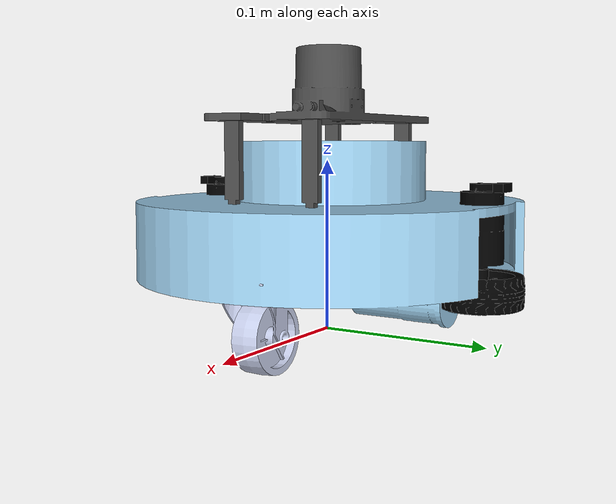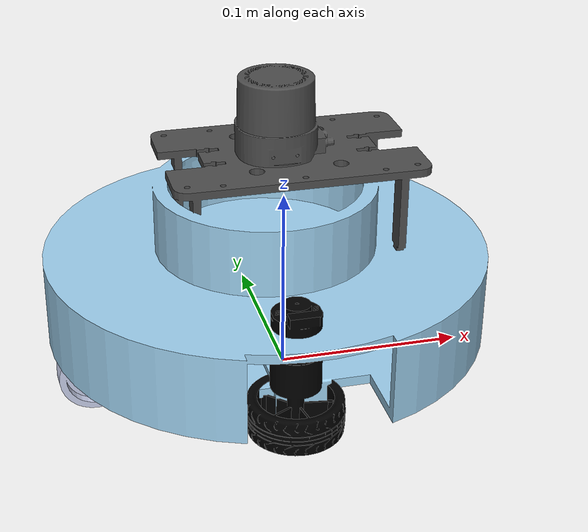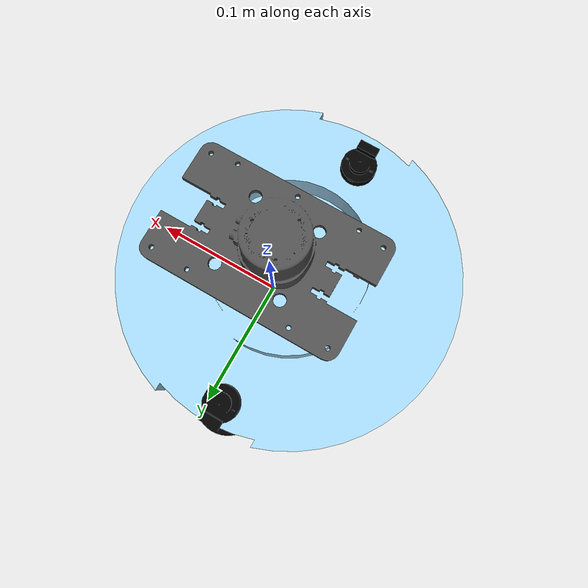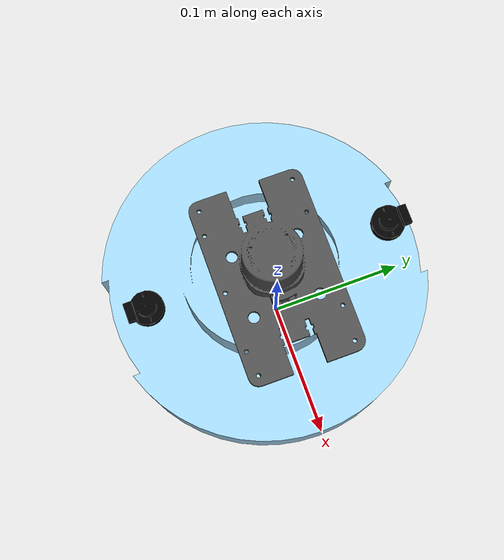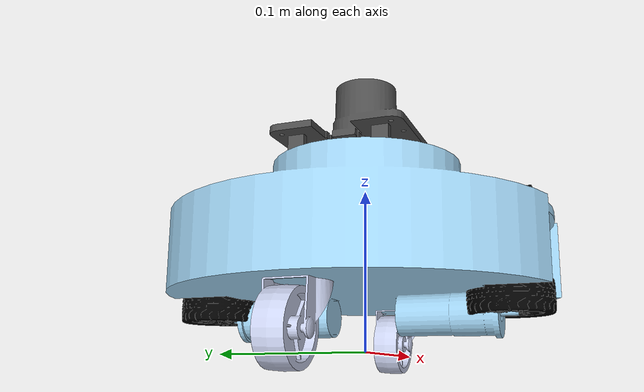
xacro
<?xml version="1.0"?>

<robot name="lasse" xmlns:xacro="http://ros.org/wiki/xacro">

  <xacro:include filename="$(find robot_description)/urdf/gazebo_3D.xacro" />

  <xacro:include filename="$(find robot_description)/urdf/ros2_control.xacro" />

  <material name="blue">
    <color rgba="0.615686 0.811765 0.929412 1"/>
  </material>
  <material name="black">
    <color rgba="0 0 0 1"/>
  </material>
  <material name="silver">
    <color rgba="0.79 0.82 0.93 1"/>
  </material>
  <material name="dark_grey">
    <color rgba="0.3 0.3 0.3 1"/>
  </material>

  <link name="base_footprint"/>

  <link name="base_link">
    <inertial>
      <origin xyz="0 0 0.04" rpy="0.0 0 0" />
      <mass value="0.665"/>
      <inertia ixx="0.004503" ixy="2.80e-7" ixz="-9.27e-6"
         iyy="0.004181" iyz="-1.70e-7"
         izz="0.007022"/>
    </inertial>
    <visual>
      <origin xyz="0 0.02 0" rpy="0 0 1.57" />
      <geometry>
        <mesh filename="package://robot_description/meshes/base_link.stl" scale="0.001 0.001 0.001" />
      </geometry>
      <material name="blue"/>
    </visual>
    <collision>
      <origin xyz="0 0.02 0" rpy="0 0 1.57" />
      <geometry>
        <mesh filename="package://robot_description/meshes/base_link.stl" scale="0.001 0.001 0.001" />
      </geometry>
    </collision>
  </link>

  <joint name="base_joint" type="fixed">
    <parent link="base_footprint"/>
    <child link="base_link" />
    <origin xyz="0 0 0.033" rpy="0 0 0"/>
  </joint>

  <link name="wheel_right_link">
    <inertial>
      <origin xyz="0 -0.014 0" rpy="0 0 0" />
      <mass value="0.0530086090966721" />
      <inertia ixx="1.88176298336665E-05" ixy="-4.8444933029987E-10" ixz="1.88163708851143E-08"
               iyy="3.11510738647764E-05" iyz="-6.93560663069607E-11"
               izz="1.8801969558182E-05" />
    </inertial>
    <visual>
      <origin xyz="0 0 0" rpy="1.57 0 0" />
      <geometry>
        <mesh filename="package://robot_description/meshes/wheel_right_link.STL" />
      </geometry>
      <material name="black"/>
    </visual>
    <collision>
      <origin xyz="0 0 0" rpy="1.57 0 0" />
      <geometry>
        <sphere radius="0.033"/>
      </geometry>
    </collision>
  </link>

  <joint name="wheel_right_joint" type="continuous">
    <origin xyz="-0.017 -0.09 -0.012" rpy="0 0 0" />
    <parent link="base_link" />
    <child link="wheel_right_link" />
    <axis xyz="0 1 0" />
  </joint>

  <link
    name="wheel_left_link">
    <inertial>
      <origin xyz="0 0.014 0" rpy="0 0 0" />
      <mass value="0.0530086043217644" />
      <inertia ixx="1.8792911368909E-05"  ixy="3.31256392204584E-10" ixz="-1.14082001662767E-08"
               iyy="3.11510738759073E-05" iyz="-3.60499245082192E-10"
               izz="1.88266886146847E-05" />
    </inertial>
    <visual>
      <origin xyz="0 0 0" rpy="-1.57 0 0" />
      <geometry>
        <mesh filename="package://robot_description/meshes/wheel_left_link.STL" />
      </geometry>
      <material name="black"/>
    </visual>
    <collision>
      <origin xyz="0 0 0" rpy="-1.57 0 0" />
      <geometry>
        <sphere radius="0.033"/>
      </geometry>
    </collision>
  </link>

  <joint name="wheel_left_joint" type="continuous">
    <origin xyz="-0.017  0.09 -0.012" rpy="0 0 0" />
    <parent link="base_link" />
    <child link="wheel_left_link" />
    <axis xyz="0 1 0" />
  </joint>

  <link name="caster_front_link">
    <inertial>
      <origin xyz="3.89968128948481E-07 2.40073004698083E-07 0.00219173397061506" rpy="0 0 0" />
      <mass value="1.44379265037903E-06" />
      <inertia ixx="7.23075276010246E-11" ixy="-6.10956883467859E-16" ixz="2.22849693525031E-15"
               iyy="3.8713793085917E-11"  iyz="2.93909858781952E-15"
               izz="1.00967486676306E-10" />
    </inertial>
    <visual>
      <origin xyz="0 0 0" rpy="0 0 0" />
      <geometry>
        <mesh filename="package://robot_description/meshes/caster_front_link.stl" scale="0.001 0.001 0.001" />
      </geometry>
      <material name="silver"/>
    </visual>
    <collision>
      <origin xyz="0 0 0" rpy="0 0 0" />
      <geometry>
        <mesh filename="package://robot_description/meshes/caster_front_link.stl" scale="0.001 0.001 0.001" />
      </geometry>
    </collision>
  </link>

  <joint name="caster_front_joint" type="fixed">
    <origin xyz="0.085 -0.02 0.005" rpy="0 0 0" />
    <parent link="base_link" />
    <child link="caster_front_link" />
    <axis xyz="0.068 0 0" />
  </joint>

  <link name="caster_rear_link">
    <inertial>
      <origin xyz="3.8996812895542E-07 2.40073004698083E-07 0.00219173397061509" rpy="0 0 0" />
      <mass value="1.44379265037902E-06" />
      <inertia ixx="7.23075276010246E-11" ixy="-6.10956872363424E-16" ixz="2.22849693527207E-15"
               iyy="3.87137930859167E-11" iyz="2.939098587861E-15"
               izz="1.00967486676306E-10" />
    </inertial>
    <visual>
      <origin xyz="0 0 0" rpy="0 0 0" />
      <geometry>
        <mesh filename="package://robot_description/meshes/caster_rear_link.stl" scale="0.001 0.001 0.001" />
      </geometry>
      <material name="silver"/>
    </visual>
    <collision>
      <origin xyz="0 0 0" rpy="0 0 0" />
      <geometry>
        <mesh filename="package://robot_description/meshes/caster_rear_link.stl" scale="0.001 0.001 0.001" />
      </geometry>
    </collision>
  </link>

  <joint name="caster_rear_joint" type="fixed">
    <origin xyz="-0.085 -0.02 0.005" rpy="0 0 0" />
    <parent link="base_link" />
    <child link="caster_rear_link" />
    <axis xyz="0 0 0" />
  </joint>

  <link name="laser_link">
    <inertial>
      <origin xyz="-0.011945780406062 -0.000381929217680526 -0.0170649378129477" rpy="0 0 0" />
      <mass value="0.073084435549317" />
      <inertia ixx="1.96074931730795E-05" ixy="-3.62091076640009E-07" ixz="4.28230084046735E-07"
               iyy="2.40983835136327E-05" iyz="1.50180909250652E-08"
               izz="4.14184164228595E-05" />
    </inertial>
    <visual>
      <origin xyz="0 0 0" rpy="0 0 0" />
      <geometry>
        <mesh filename="package://robot_description/meshes/laser_link.STL" />
      </geometry>
      <material name="dark_grey"/>
    </visual>
    <collision>
      <origin xyz="0 0 0" rpy="0 0 0" />
      <geometry>
        <mesh filename="package://robot_description/meshes/laser_link.STL" />
      </geometry>
    </collision>
  </link>

  <joint name="laser_joint" type="fixed">
    <origin xyz="-0.0050526 -0.0023221 0.1208" rpy="0 0 3.14" />
    <parent link="base_link" />
    <child link="laser_link" />
    <axis xyz="0 0 0" />
  </joint>

</robot>
